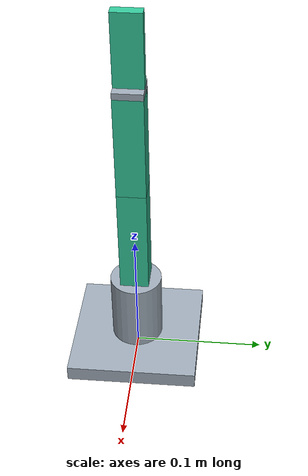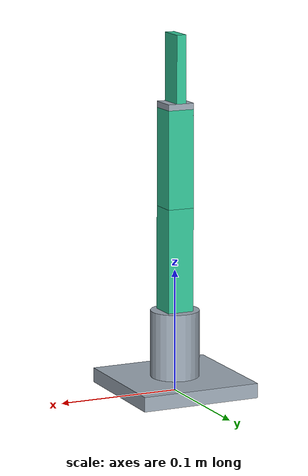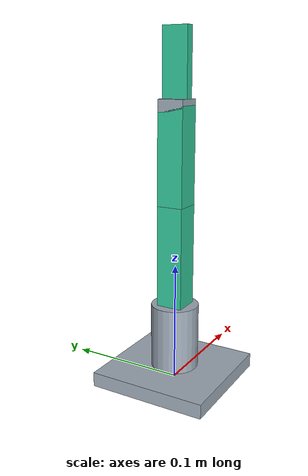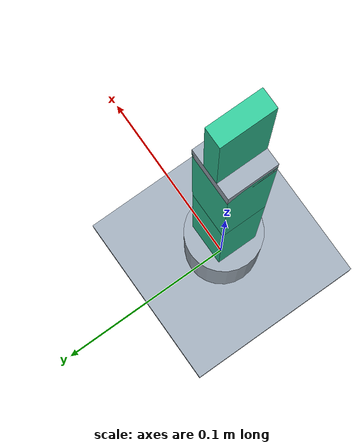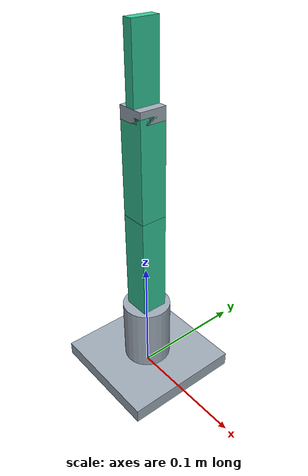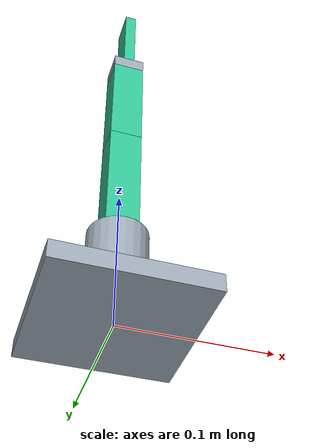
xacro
<?xml version="1.0"?>
<robot xmlns:xacro="http://www.ros.org/wiki/xacro" name="arm">

  <!-- ==== MEASURE THESE FOUR (metres) ================================== -->
  <xacro:property name="base_height" value="0.055"/>  <!-- UNVERIFIED: table to shoulder pivot -->
  <xacro:property name="upper_arm"   value="0.085"/>  <!-- UNVERIFIED: shoulder to elbow pivot -->
  <xacro:property name="forearm"     value="0.080"/>  <!-- UNVERIFIED: elbow to wrist pivot -->
  <xacro:property name="gripper_len" value="0.055"/>  <!-- UNVERIFIED: wrist to gripper tip -->

  <xacro:property name="limb_w" value="0.022"/>
  <xacro:property name="pi_2"   value="1.5707963"/>

  <!-- SG90-class servos and printed links: masses are nominal. Nothing in the
       plan-and-execute path uses dynamics, but a URDF without inertia makes
       several tools complain. -->
  <xacro:macro name="chunk" params="mass">
    <inertial>
      <mass value="${mass}"/>
      <origin xyz="0 0 0"/>
      <inertia ixx="1e-4" ixy="0" ixz="0" iyy="1e-4" iyz="0" izz="1e-4"/>
    </inertial>
  </xacro:macro>

  <material name="steel"><color rgba="0.62 0.67 0.72 1"/></material>
  <material name="mint"><color rgba="0.20 0.78 0.60 1"/></material>

  <!-- Ground plate. Fixed frame the planner treats as the world. -->
  <link name="base_link">
    <visual>
      <origin xyz="0 0 0.006"/>
      <geometry><box size="0.10 0.10 0.012"/></geometry>
      <material name="steel"/>
    </visual>
    <collision>
      <origin xyz="0 0 0.006"/>
      <geometry><box size="0.10 0.10 0.012"/></geometry>
    </collision>
    <xacro:chunk mass="0.20"/>
  </link>

  <!-- joint0 — base rotation, GPIO 27 (D27) -->
  <joint name="joint0" type="revolute">
    <parent link="base_link"/>
    <child link="base_rotor"/>
    <origin xyz="0 0 0.012"/>
    <axis xyz="0 0 1"/>
    <limit lower="-${pi_2}" upper="${pi_2}" effort="1.5" velocity="0.6"/>
  </joint>

  <link name="base_rotor">
    <visual>
      <origin xyz="0 0 ${base_height/2}"/>
      <geometry><cylinder radius="0.020" length="${base_height}"/></geometry>
      <material name="steel"/>
    </visual>
    <collision>
      <origin xyz="0 0 ${base_height/2}"/>
      <geometry><cylinder radius="0.020" length="${base_height}"/></geometry>
    </collision>
    <xacro:chunk mass="0.08"/>
  </link>

  <!-- joint1 — shoulder, GPIO 26 (D26). Zero points the upper arm straight up. -->
  <joint name="joint1" type="revolute">
    <parent link="base_rotor"/>
    <child link="upper_arm_link"/>
    <origin xyz="0 0 ${base_height}"/>
    <axis xyz="0 1 0"/>
    <limit lower="-${pi_2}" upper="${pi_2}" effort="1.5" velocity="0.6"/>
  </joint>

  <link name="upper_arm_link">
    <visual>
      <origin xyz="0 0 ${upper_arm/2}"/>
      <geometry><box size="${limb_w} ${limb_w} ${upper_arm}"/></geometry>
      <material name="mint"/>
    </visual>
    <collision>
      <origin xyz="0 0 ${upper_arm/2}"/>
      <geometry><box size="${limb_w} ${limb_w} ${upper_arm}"/></geometry>
    </collision>
    <xacro:chunk mass="0.06"/>
  </link>

  <!-- joint2 — elbow, GPIO 25 (D25) -->
  <joint name="joint2" type="revolute">
    <parent link="upper_arm_link"/>
    <child link="forearm_link"/>
    <origin xyz="0 0 ${upper_arm}"/>
    <axis xyz="0 1 0"/>
    <limit lower="-${pi_2}" upper="${pi_2}" effort="1.5" velocity="0.6"/>
  </joint>

  <link name="forearm_link">
    <visual>
      <origin xyz="0 0 ${forearm/2}"/>
      <geometry><box size="${limb_w} ${limb_w} ${forearm}"/></geometry>
      <material name="mint"/>
    </visual>
    <collision>
      <origin xyz="0 0 ${forearm/2}"/>
      <geometry><box size="${limb_w} ${limb_w} ${forearm}"/></geometry>
    </collision>
    <xacro:chunk mass="0.05"/>
  </link>

  <!-- Wrist plate: fixed. This build has no wrist servo; GPIO 33 drives the
       gripper jaws, which is why the arm group below is three joints. -->
  <link name="wrist_link">
    <visual>
      <geometry><box size="${limb_w} ${limb_w} 0.010"/></geometry>
      <material name="steel"/>
    </visual>
    <collision>
      <geometry><box size="${limb_w} ${limb_w} 0.010"/></geometry>
    </collision>
    <xacro:chunk mass="0.02"/>
  </link>

  <joint name="wrist_fixed" type="fixed">
    <parent link="forearm_link"/>
    <child link="wrist_link"/>
    <origin xyz="0 0 ${forearm}"/>
  </joint>

  <!-- joint3 — gripper, GPIO 33 (D33). One driven jaw; the mimic jaw is
       visual only, so it stays out of the planning group. -->
  <joint name="joint3" type="revolute">
    <parent link="wrist_link"/>
    <child link="gripper_jaw"/>
    <origin xyz="0 0 0.005"/>
    <axis xyz="0 1 0"/>
    <limit lower="-${pi_2}" upper="${pi_2}" effort="1.0" velocity="0.6"/>
  </joint>

  <link name="gripper_jaw">
    <visual>
      <origin xyz="0 0 ${gripper_len/2}"/>
      <geometry><box size="0.008 ${limb_w} ${gripper_len}"/></geometry>
      <material name="mint"/>
    </visual>
    <collision>
      <origin xyz="0 0 ${gripper_len/2}"/>
      <geometry><box size="0.008 ${limb_w} ${gripper_len}"/></geometry>
    </collision>
    <xacro:chunk mass="0.02"/>
  </link>

  <!-- Planning target. Pose goals are given for this frame. -->
  <link name="tool0"/>
  <joint name="tool0_fixed" type="fixed">
    <parent link="wrist_link"/>
    <child link="tool0"/>
    <origin xyz="0 0 ${gripper_len}"/>
  </joint>

</robot>
